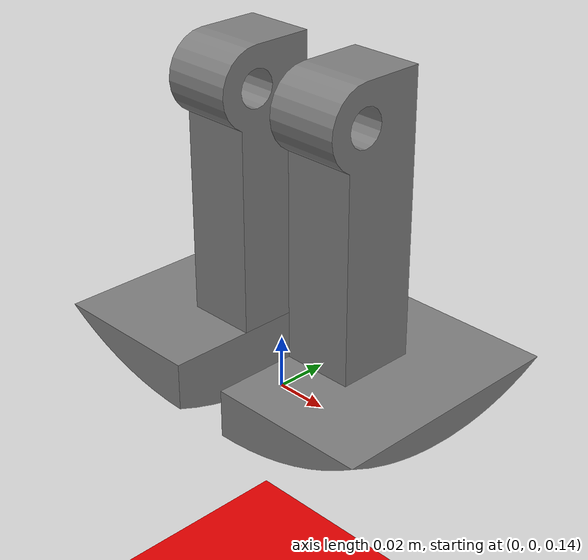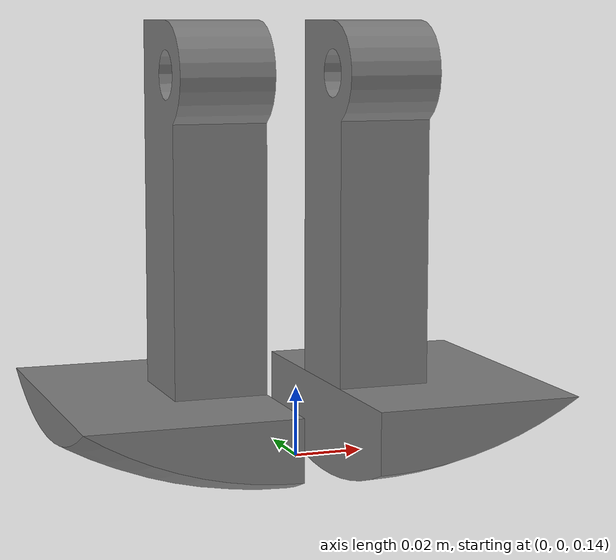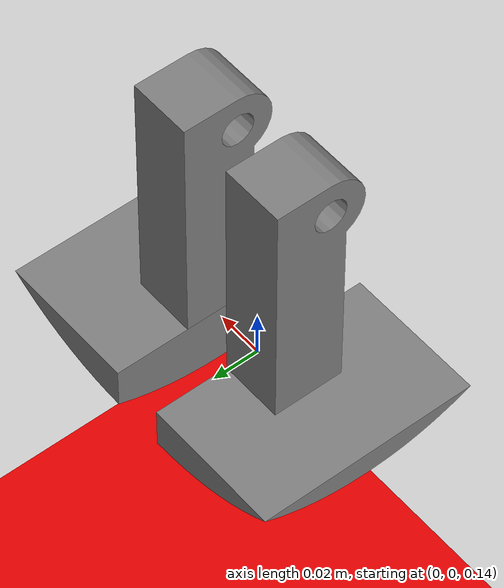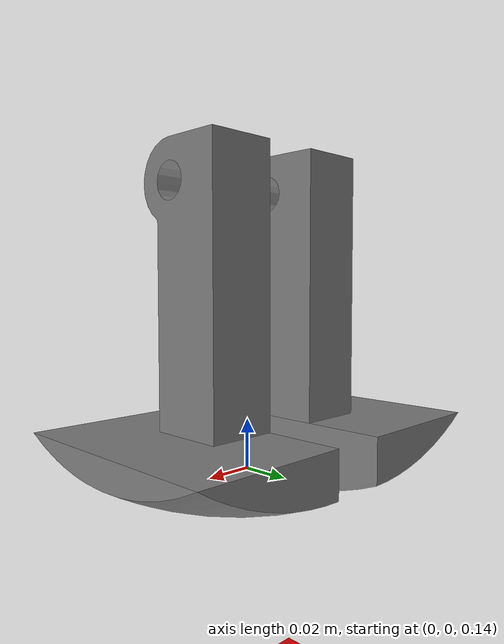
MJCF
<mujoco>

    <option gravity="0 0 -10" />
    <option integrator="RK4" />

    <asset>
        <!-- Placeholder for mesh files -->
        <mesh name="l_leg" file="l_leg.STL" />
        <mesh name="l_foot" file="l_foot.STL" />
        <mesh name="r_leg" file="r_leg.STL" />
        <mesh name="r_foot" file="r_foot.STL" />
    </asset>

    <worldbody>
        <light diffuse=".5 .5 .5" pos="0 0 3" dir="0 0 -1" />
        <geom type="plane" size="1 1 0.1" rgba=".9 0 0 1" friction="0.5 0.5 0.05" solimp="0.99 0.99 0.0001 0.5 2" solref="0.01 1" condim="3"/>
        <!-- Hip Joint connecting both legs -->
        <!-- Left Leg -->
        <body name="left_leg" pos="0 0 0.25" euler="90 0 0">
            <joint type="free" />
            <geom type="mesh" mesh="l_leg" name="left_leg_geom"/>

            <!-- Left Foot -->
            <body name="left_foot" pos="0 0 0">
                <joint name="left_foot_joint" type="slide" pos="0 0 0" axis="0 -1 0" range="0 0.015"/>
                <geom type="mesh" mesh="l_foot" name="left_foot_geom" friction="0.5 0.5 0.05" solimp="0.99 0.99 0.0001 0.5 2" solref="0.01 1" condim="3"/>
            </body>

            <body name="right_leg" pos="0 0 0">
                <joint name="hip_joint" type="hinge" pos="0 0 0" axis="1 0 0" />
                <geom type="mesh" mesh="r_leg" name="right_leg_geom"/>

                <!-- Right Foot -->
                <body name="right_foot" pos="0 0 0" >
                    <joint name="right_foot_joint" type="slide" pos="0 0 0" axis="0 -1 0" range="0 0.015"/>
                    <geom type="mesh" mesh="r_foot" name="right_foot_geom" friction="0.5 0.5 0.05" solimp="0.99 0.99 0.0001 0.5 2" solref="0.01 1" condim="3"/>
                </body>
            </body>
        </body>
    </worldbody>

    <actuator>
        <!-- Actuators for the hip and foot joints -->
        <position joint="left_foot_joint" kp="1"/>
        <position joint="right_foot_joint" kp="1"/>
    </actuator>
</mujoco>
